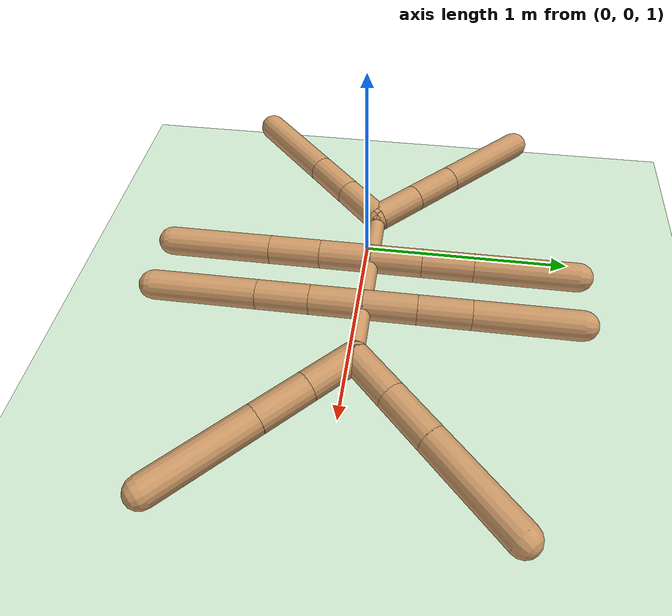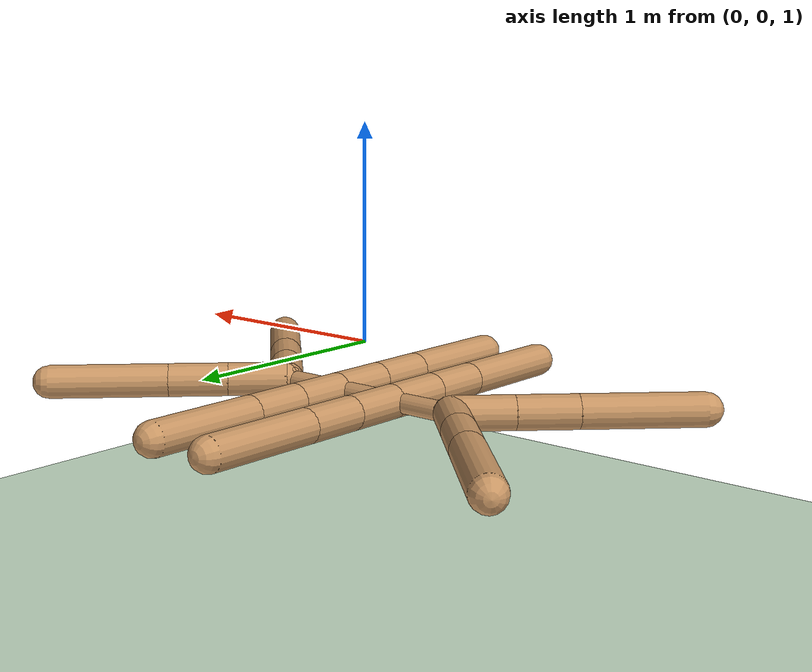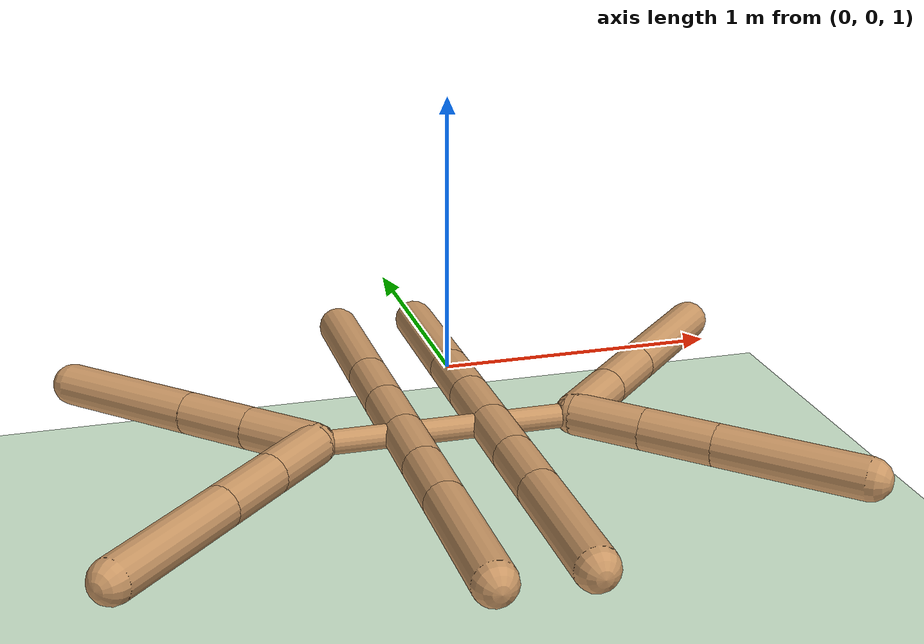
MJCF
<mujoco model="ant">
  <compiler angle="degree" coordinate="local" inertiafromgeom="true"/>
  <option integrator="RK4" timestep="0.01"/>
  <custom>
    <numeric data="0.0 0.0 0.55 1.0 0.0 0.0 0.0 0.0 1.0 0.0 -1.0 0.0 -1.0 0.0 1.0" name="init_qpos"/>
  </custom>
  <default>
    <joint armature="1" damping="1" limited="true"/>
    <geom conaffinity="0" condim="3" density="5.0" friction="1 0.5 0.5" margin="0.01" rgba="0.8 0.6 0.4 1"/>
  </default>
  <asset>
    <texture builtin="gradient" height="100" rgb1="1 1 1" rgb2="0 0 0" type="skybox" width="100"/>
    <texture builtin="flat" height="1278" mark="cross" markrgb="1 1 1" name="texgeom" random="0.01" rgb1="0.8 0.6 0.4" rgb2="0.8 0.6 0.4" type="cube" width="127"/>
    <texture builtin="checker" height="100" name="texplane" rgb1="0 0 0" rgb2="0.8 0.8 0.8" type="2d" width="100"/>
    <material name="MatPlane" reflectance="0.5" shininess="1" specular="1" texrepeat="60 60" texture="texplane"/>
    <material name="geom" texture="texgeom" texuniform="true"/>
  </asset>
  <worldbody>
    <light cutoff="100" diffuse="1 1 1" dir="-0 0 -1.3" directional="true" exponent="1" pos="0 0 1.3" specular=".1 .1 .1"/>
    <geom conaffinity="1" condim="3" material="MatPlane" name="floor" pos="0 0 0" rgba="0.8 0.9 0.8 1" size="40 40 40" type="plane"/>
    <body name="torso" pos="0 0 0.75">
      <camera name="track" mode="trackcom" pos="0 -3 0.3" xyaxes="1 0 0 0 0 1"/>
      <geom fromto="-.5 0 0 .5 0 0" name="torso_geom" size="0.046" type="capsule"/>
      <joint armature="0" damping="0" limited="false" margin="0.01" name="root" pos="0 0 0" type="free"/>
      <body name="front_left_leg" pos=".5 0 0">
        <geom fromto="0.0 0.0 0.0 0.2 0.2 0.0" name="aux_1_geom" size="0.08" type="capsule"/>
        <body name="aux_1" pos="0.2 0.2 0">
          <joint axis="0 0 1" name="hip_1" pos="0.0 0.0 0.0" range="-30 30" type="hinge"/>
          <geom fromto="0.0 0.0 0.0 0.2 0.2 0.0" name="left_leg_geom" size="0.08" type="capsule"/>
          <body pos="0.2 0.2 0">
            <joint axis="-1 1 0" name="ankle_1" pos="0.0 0.0 0.0" range="30 70" type="hinge"/>
            <geom fromto="0.0 0.0 0.0 0.4 0.4 0.0" name="left_ankle_geom" size="0.08" type="capsule"/>
          </body>
        </body>
      </body>
      <body name="front_right_leg" pos="-.5 0 0">
        <geom fromto="0.0 0.0 0.0 -0.2 0.2 0.0" name="aux_2_geom" size="0.08" type="capsule"/>
        <body name="aux_2" pos="-0.2 0.2 0">
          <joint axis="0 0 1" name="hip_2" pos="0.0 0.0 0.0" range="-30 30" type="hinge"/>
          <geom fromto="0.0 0.0 0.0 -0.2 0.2 0.0" name="right_leg_geom" size="0.08" type="capsule"/>
          <body pos="-0.2 0.2 0">
            <joint axis="1 1 0" name="ankle_2" pos="0.0 0.0 0.0" range="-70 -30" type="hinge"/>
            <geom fromto="0.0 0.0 0.0 -0.4 0.4 0.0" name="right_ankle_geom" size="0.08" type="capsule"/>
          </body>
        </body>
      </body>
      <body name="back_leg" pos="-.5 0 0">
        <geom fromto="0.0 0.0 0.0 -0.2 -0.2 0.0" name="aux_3_geom" size="0.08" type="capsule"/>
        <body name="aux_3" pos="-0.2 -0.2 0">
          <joint axis="0 0 1" name="hip_3" pos="0.0 0.0 0.0" range="-30 30" type="hinge"/>
          <geom fromto="0.0 0.0 0.0 -0.2 -0.2 0.0" name="back_leg_geom" size="0.08" type="capsule"/>
          <body pos="-0.2 -0.2 0">
            <joint axis="-1 1 0" name="ankle_3" pos="0.0 0.0 0.0" range="-70 -30" type="hinge"/>
            <geom fromto="0.0 0.0 0.0 -0.4 -0.4 0.0" name="third_ankle_geom" size="0.08" type="capsule"/>
          </body>
        </body>
      </body>
      <body name="right_back_leg" pos="0.5 0 0">
        <geom fromto="0.0 0.0 0.0 0.2 -0.2 0.0" name="aux_4_geom" size="0.08" type="capsule"/>
        <body name="aux_4" pos="0.2 -0.2 0">
          <joint axis="0 0 1" name="hip_4" pos="0.0 0.0 0.0" range="-30 30" type="hinge"/>
          <geom fromto="0.0 0.0 0.0 0.2 -0.2 0.0" name="rightback_leg_geom" size="0.08" type="capsule"/>
          <body pos="0.2 -0.2 0">
            <joint axis="1 1 0" name="ankle_4" pos="0.0 0.0 0.0" range="30 70" type="hinge"/>
            <geom fromto="0.0 0.0 0.0 0.4 -0.4 0.0" name="fourth_ankle_geom" size="0.08" type="capsule"/>
          </body>
        </body>
      </body>
      <body name="mid_left_back_leg" pos="-0.167 0 0">
        <geom fromto="0.0 0.0 0.0 0.0 -0.2828427 0.0" name="aux_5_geom" size="0.08" type="capsule"/>
        <body name="aux_5" pos="0.0 -0.2828427 0">
          <joint axis="0 0 1" name="hip_5" pos="0.0 0.0 0.0" range="-30 30" type="hinge"/>
          <geom fromto="0.0 0.0 0.0 0.0 -0.2828427 0.0" name="midback_leg_geom" size="0.08" type="capsule"/>
          <body pos="0.0 -0.2828427 0">
            <joint axis="1 1 0" name="ankle_5" pos="0.0 0.0 0.0" range="30 70" type="hinge"/>
            <geom fromto="0.0 0.0 0.0 0.0 -0.56568542 0.0" name="fifth_ankle_geom" size="0.08" type="capsule"/>
          </body>
        </body>
      </body>
      <body name="front_left_mid_leg" pos="-0.167 0 0">
        <geom fromto="0.0 0.0 0.0 0.0 0.2828427 0.0" name="aux_6_geom" size="0.08" type="capsule"/>
        <body name="aux_6" pos="0.0 0.2828427 0">
          <joint axis="0 0 1" name="hip_6" pos="0.0 0.0 0.0" range="-30 30" type="hinge"/>
          <geom fromto="0.0 0.0 0.0 0.0 0.2828427 0.0" name="midfront_leg_geom" size="0.08" type="capsule"/>
          <body pos="0.0 0.2828427 0">
            <joint axis="1 1 0" name="ankle_6" pos="0.0 0.0 0.0" range="-70 -30" type="hinge"/>
            <geom fromto="0.0 0.0 0.0 0.0 0.56568542 0.0" name="sixth_ankle_geom" size="0.08" type="capsule"/>
          </body>
        </body>
      </body>
      <body name="mid_right_back_leg" pos="0.167 0 0">
        <geom fromto="0.0 0.0 0.0 0.0 -0.2828427 0.0" name="aux_7_geom" size="0.08" type="capsule"/>
        <body name="aux_7" pos="0.0 -0.2828427 0">
          <joint axis="0 0 1" name="hip_7" pos="0.0 0.0 0.0" range="-30 30" type="hinge"/>
          <geom fromto="0.0 0.0 0.0 0.0 -0.2828427 0.0" name="midback_left_leg_geom" size="0.08" type="capsule"/>
          <body pos="0.0 -0.2828427 0">
            <joint axis="1 1 0" name="ankle_7" pos="0.0 0.0 0.0" range="30 70" type="hinge"/>
            <geom fromto="0.0 0.0 0.0 0.0 -0.56568542 0.0" name="seventh_ankle_geom" size="0.08" type="capsule"/>
          </body>
        </body>
      </body>
      <body name="front_right_mid_leg" pos="0.167 0 0">
        <geom fromto="0.0 0.0 0.0 0.0 0.2828427 0.0" name="aux_8_geom" size="0.08" type="capsule"/>
        <body name="aux_8" pos="0.0 0.2828427 0">
          <joint axis="0 0 1" name="hip_8" pos="0.0 0.0 0.0" range="-30 30" type="hinge"/>
          <geom fromto="0.0 0.0 0.0 0.0 0.2828427 0.0" name="midfront_left_leg_geom" size="0.08" type="capsule"/>
          <body pos="0.0 0.2828427 0">
            <joint axis="1 1 0" name="ankle_8" pos="0.0 0.0 0.0" range="-70 -30" type="hinge"/>
            <geom fromto="0.0 0.0 0.0 0.0 0.56568542 0.0" name="eighth_ankle_geom" size="0.08" type="capsule"/>
          </body>
        </body>
      </body>
    </body>
  </worldbody>
  <actuator>
    <motor ctrllimited="true" ctrlrange="-1.0 1.0" joint="hip_4" gear="150"/>
    <motor ctrllimited="true" ctrlrange="-1.0 1.0" joint="ankle_4" gear="150"/>
    <motor ctrllimited="true" ctrlrange="-1.0 1.0" joint="hip_1" gear="150"/>
    <motor ctrllimited="true" ctrlrange="-1.0 1.0" joint="ankle_1" gear="150"/>
    <motor ctrllimited="true" ctrlrange="-1.0 1.0" joint="hip_2" gear="150"/>
    <motor ctrllimited="true" ctrlrange="-1.0 1.0" joint="ankle_2" gear="150"/>
    <motor ctrllimited="true" ctrlrange="-1.0 1.0" joint="hip_3" gear="150"/>
    <motor ctrllimited="true" ctrlrange="-1.0 1.0" joint="ankle_3" gear="150"/>
    <motor ctrllimited="true" ctrlrange="-1.0 1.0" joint="hip_5" gear="150"/>
    <motor ctrllimited="true" ctrlrange="-1.0 1.0" joint="ankle_5" gear="150"/>
    <motor ctrllimited="true" ctrlrange="-1.0 1.0" joint="hip_6" gear="150"/>
    <motor ctrllimited="true" ctrlrange="-1.0 1.0" joint="ankle_6" gear="150"/>
    <motor ctrllimited="true" ctrlrange="-1.0 1.0" joint="hip_7" gear="150"/>
    <motor ctrllimited="true" ctrlrange="-1.0 1.0" joint="ankle_7" gear="150"/>
    <motor ctrllimited="true" ctrlrange="-1.0 1.0" joint="hip_8" gear="150"/>
    <motor ctrllimited="true" ctrlrange="-1.0 1.0" joint="ankle_8" gear="150"/>
  </actuator>
</mujoco>
